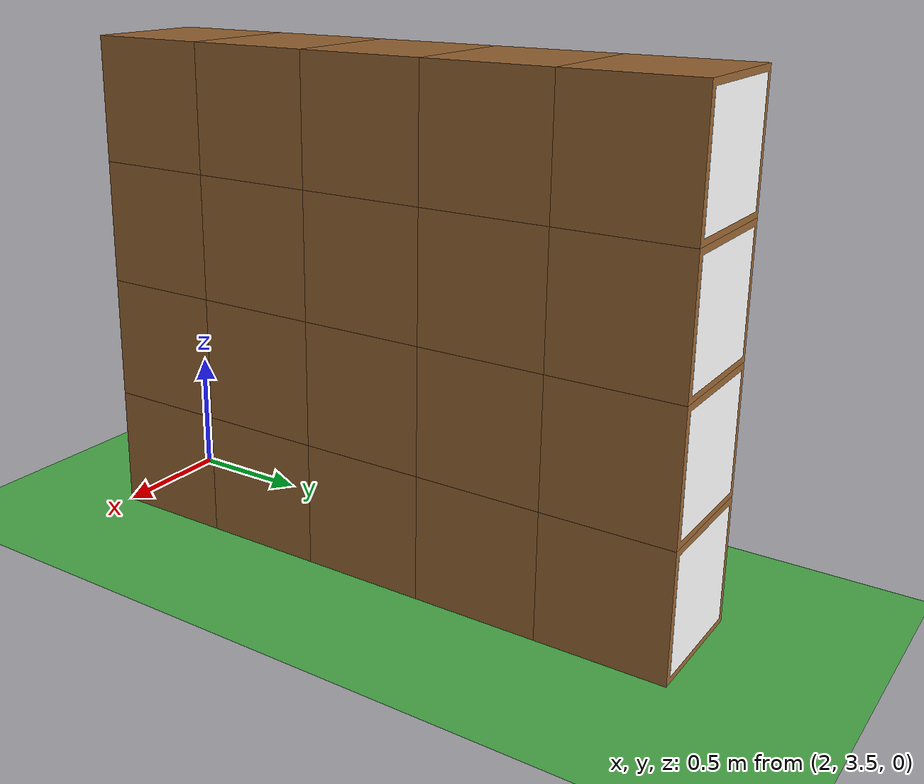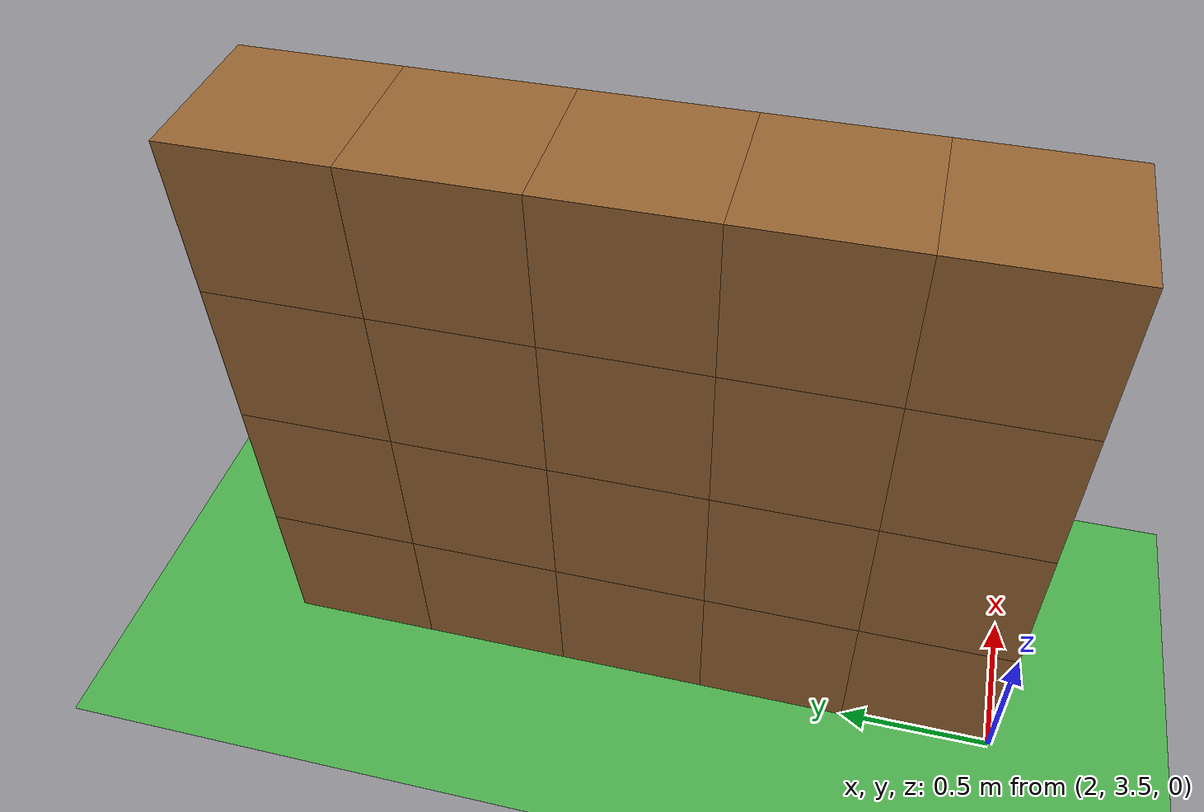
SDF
<sdf version="1.7">
 <world name="tsmc_bkk">
  <physics type="ode">
   <max_step_size>0.004</max_step_size>
   <real_time_factor>1.0</real_time_factor>
   <real_time_update_rate>250</real_time_update_rate>
  </physics>
  <gravity>0 0 -9.8</gravity>
  <magnetic_field>2.5e-05 1.8e-05 -4.0e-05</magnetic_field>
  <atmosphere type="adiabatic"/>
  <spherical_coordinates>
   <surface_model>EARTH_WGS84</surface_model>
   <world_frame_orientation>ENU</world_frame_orientation>
   <latitude_deg>23.089813</latitude_deg>
   <longitude_deg>120.307312</longitude_deg>
   <elevation>0</elevation>
  </spherical_coordinates>
  <scene><ambient>1 1 1 1</ambient><background>1 1 1 1</background><shadows>false</shadows></scene>
  <light type="directional" name="no_shadow_light">
   <cast_shadows>false</cast_shadows>
   <pose>0 0 10 0 0 0</pose>
   <diffuse>1 1 1 1</diffuse>
   <specular>0.1 0.1 0.1 1</specular>
   <attenuation><range>1000</range><constant>1</constant><linear>0</linear><quadratic>0</quadratic></attenuation>
   <direction>0 0 -1</direction>
  </light>
  <model name="top_camera">
   <static>true</static>
   <pose>2.25 5.0 20 0 1.5708 0</pose>
   <link name="link">
    <sensor name="top_down_camera" type="camera">
     <camera>
      <horizontal_fov>1.047</horizontal_fov>
      <image><width>800</width><height>800</height><format>R8G8B8</format></image>
      <clip><near>0.1</near><far>100</far></clip>
     </camera>
     <always_on>true</always_on>
     <update_rate>30</update_rate>
     <visualize>true</visualize>
    </sensor>
   </link>
  </model>
  <model name="outer_ground_plane">
   <static>true</static>
   <pose>2.25 5.0 -0.01 0 0 0</pose>
   <link name="link">
    <collision name="collision">
     <geometry><plane><normal>0 0 1</normal><size>6 11</size></plane></geometry>
    </collision>
    <visual name="visual">
     <geometry><plane><normal>0 0 1</normal><size>6 11</size></plane></geometry>
     <material>
      <ambient>0.2 0.6 0.2 1</ambient>
      <diffuse>0.3 0.7 0.3 1</diffuse>
      <specular>0.1 0.1 0.1 1</specular>
     </material>
    </visual>
   </link>
  </model>
  <model name="ground_plane">
   <static>true</static>
   <pose>2.25 5.0 0 0 0 0</pose>
   <link name="link">
    <collision name="collision">
     <geometry><plane><normal>0 0 1</normal><size>4.5 9</size></plane></geometry>
    </collision>
    <visual name="visual">
     <geometry><plane><normal>0 0 1</normal><size>4.5 9</size></plane></geometry>
     <material>
      <ambient>0.5 0.5 0.5 1</ambient>
      <diffuse>0.6 0.6 0.6 1</diffuse>
      <specular>0.1 0.1 0.1 1</specular>
     </material>
    </visual>
   </link>
  </model>
  <model name="stack_r0_b1">
   <static>true</static>
   <pose>2.25 3.75 0.25 0 0 0</pose>
   <link name="stack_link">
    <collision name="collision"><geometry><box><size>0.5 0.5 0.5</size></box></geometry></collision>
    <visual name="visual">
     <geometry><box><size>0.5 0.5 0.5</size></box></geometry>
     <material>
      <ambient>0.4 0.25 0.1 1</ambient>
      <diffuse>0.6 0.4 0.2 1</diffuse>
      <specular>0.1 0.1 0.1 1</specular>
     </material>
    </visual>
    <visual name="aruco_south">
     <pose>0 -0.251 0 1.5707963267948966 0 0</pose>
     <geometry><plane><normal>0 0 1</normal><size>0.45 0.45</size></plane></geometry>
     <material>
      <diffuse>1 1 1 1</diffuse>
      <specular>0.1 0.1 0.1 1</specular>
      <pbr><metal><albedo_map>model://stack_aruco_textures/marker_00.png</albedo_map></metal></pbr>
     </material>
    </visual>
    <visual name="aruco_north">
     <pose>0 0.251 0 -1.5707963267948966 0 0</pose>
     <geometry><plane><normal>0 0 1</normal><size>0.45 0.45</size></plane></geometry>
     <material>
      <diffuse>1 1 1 1</diffuse>
      <specular>0.1 0.1 0.1 1</specular>
      <pbr><metal><albedo_map>model://stack_aruco_textures/marker_20.png</albedo_map></metal></pbr>
     </material>
    </visual>
    <inertial>
     <mass>0.5</mass>
     <inertia><ixx>0.00208</ixx><ixy>0</ixy><ixz>0</ixz><iyy>0.00208</iyy><iyz>0</iyz><izz>0.00208</izz></inertia>
    </inertial>
   </link>
  </model>
  <model name="stack_r0_b2">
   <static>true</static>
   <pose>2.25 3.75 0.75 0 0 0</pose>
   <link name="stack_link">
    <collision name="collision"><geometry><box><size>0.5 0.5 0.5</size></box></geometry></collision>
    <visual name="visual">
     <geometry><box><size>0.5 0.5 0.5</size></box></geometry>
     <material>
      <ambient>0.4 0.25 0.1 1</ambient>
      <diffuse>0.6 0.4 0.2 1</diffuse>
      <specular>0.1 0.1 0.1 1</specular>
     </material>
    </visual>
    <visual name="aruco_south">
     <pose>0 -0.251 0 1.5707963267948966 0 0</pose>
     <geometry><plane><normal>0 0 1</normal><size>0.45 0.45</size></plane></geometry>
     <material>
      <diffuse>1 1 1 1</diffuse>
      <specular>0.1 0.1 0.1 1</specular>
      <pbr><metal><albedo_map>model://stack_aruco_textures/marker_01.png</albedo_map></metal></pbr>
     </material>
    </visual>
    <visual name="aruco_north">
     <pose>0 0.251 0 -1.5707963267948966 0 0</pose>
     <geometry><plane><normal>0 0 1</normal><size>0.45 0.45</size></plane></geometry>
     <material>
      <diffuse>1 1 1 1</diffuse>
      <specular>0.1 0.1 0.1 1</specular>
      <pbr><metal><albedo_map>model://stack_aruco_textures/marker_21.png</albedo_map></metal></pbr>
     </material>
    </visual>
    <inertial>
     <mass>0.5</mass>
     <inertia><ixx>0.00208</ixx><ixy>0</ixy><ixz>0</ixz><iyy>0.00208</iyy><iyz>0</iyz><izz>0.00208</izz></inertia>
    </inertial>
   </link>
  </model>
  <model name="stack_r0_b3">
   <static>true</static>
   <pose>2.25 3.75 1.25 0 0 0</pose>
   <link name="stack_link">
    <collision name="collision"><geometry><box><size>0.5 0.5 0.5</size></box></geometry></collision>
    <visual name="visual">
     <geometry><box><size>0.5 0.5 0.5</size></box></geometry>
     <material>
      <ambient>0.4 0.25 0.1 1</ambient>
      <diffuse>0.6 0.4 0.2 1</diffuse>
      <specular>0.1 0.1 0.1 1</specular>
     </material>
    </visual>
    <visual name="aruco_south">
     <pose>0 -0.251 0 1.5707963267948966 0 0</pose>
     <geometry><plane><normal>0 0 1</normal><size>0.45 0.45</size></plane></geometry>
     <material>
      <diffuse>1 1 1 1</diffuse>
      <specular>0.1 0.1 0.1 1</specular>
      <pbr><metal><albedo_map>model://stack_aruco_textures/marker_02.png</albedo_map></metal></pbr>
     </material>
    </visual>
    <visual name="aruco_north">
     <pose>0 0.251 0 -1.5707963267948966 0 0</pose>
     <geometry><plane><normal>0 0 1</normal><size>0.45 0.45</size></plane></geometry>
     <material>
      <diffuse>1 1 1 1</diffuse>
      <specular>0.1 0.1 0.1 1</specular>
      <pbr><metal><albedo_map>model://stack_aruco_textures/marker_22.png</albedo_map></metal></pbr>
     </material>
    </visual>
    <inertial>
     <mass>0.5</mass>
     <inertia><ixx>0.00208</ixx><ixy>0</ixy><ixz>0</ixz><iyy>0.00208</iyy><iyz>0</iyz><izz>0.00208</izz></inertia>
    </inertial>
   </link>
  </model>
  <model name="stack_r0_b4">
   <static>true</static>
   <pose>2.25 3.75 1.75 0 0 0</pose>
   <link name="stack_link">
    <collision name="collision"><geometry><box><size>0.5 0.5 0.5</size></box></geometry></collision>
    <visual name="visual">
     <geometry><box><size>0.5 0.5 0.5</size></box></geometry>
     <material>
      <ambient>0.4 0.25 0.1 1</ambient>
      <diffuse>0.6 0.4 0.2 1</diffuse>
      <specular>0.1 0.1 0.1 1</specular>
     </material>
    </visual>
    <visual name="aruco_south">
     <pose>0 -0.251 0 1.5707963267948966 0 0</pose>
     <geometry><plane><normal>0 0 1</normal><size>0.45 0.45</size></plane></geometry>
     <material>
      <diffuse>1 1 1 1</diffuse>
      <specular>0.1 0.1 0.1 1</specular>
      <pbr><metal><albedo_map>model://stack_aruco_textures/marker_03.png</albedo_map></metal></pbr>
     </material>
    </visual>
    <visual name="aruco_north">
     <pose>0 0.251 0 -1.5707963267948966 0 0</pose>
     <geometry><plane><normal>0 0 1</normal><size>0.45 0.45</size></plane></geometry>
     <material>
      <diffuse>1 1 1 1</diffuse>
      <specular>0.1 0.1 0.1 1</specular>
      <pbr><metal><albedo_map>model://stack_aruco_textures/marker_23.png</albedo_map></metal></pbr>
     </material>
    </visual>
    <inertial>
     <mass>0.5</mass>
     <inertia><ixx>0.00208</ixx><ixy>0</ixy><ixz>0</ixz><iyy>0.00208</iyy><iyz>0</iyz><izz>0.00208</izz></inertia>
    </inertial>
   </link>
  </model>
  <model name="stack_r1_b1">
   <static>true</static>
   <pose>2.25 4.25 0.25 0 0 0</pose>
   <link name="stack_link">
    <collision name="collision"><geometry><box><size>0.5 0.5 0.5</size></box></geometry></collision>
    <visual name="visual">
     <geometry><box><size>0.5 0.5 0.5</size></box></geometry>
     <material>
      <ambient>0.4 0.25 0.1 1</ambient>
      <diffuse>0.6 0.4 0.2 1</diffuse>
      <specular>0.1 0.1 0.1 1</specular>
     </material>
    </visual>
    <visual name="aruco_south">
     <pose>0 -0.251 0 1.5707963267948966 0 0</pose>
     <geometry><plane><normal>0 0 1</normal><size>0.45 0.45</size></plane></geometry>
     <material>
      <diffuse>1 1 1 1</diffuse>
      <specular>0.1 0.1 0.1 1</specular>
      <pbr><metal><albedo_map>model://stack_aruco_textures/marker_04.png</albedo_map></metal></pbr>
     </material>
    </visual>
    <visual name="aruco_north">
     <pose>0 0.251 0 -1.5707963267948966 0 0</pose>
     <geometry><plane><normal>0 0 1</normal><size>0.45 0.45</size></plane></geometry>
     <material>
      <diffuse>1 1 1 1</diffuse>
      <specular>0.1 0.1 0.1 1</specular>
      <pbr><metal><albedo_map>model://stack_aruco_textures/marker_24.png</albedo_map></metal></pbr>
     </material>
    </visual>
    <inertial>
     <mass>0.5</mass>
     <inertia><ixx>0.00208</ixx><ixy>0</ixy><ixz>0</ixz><iyy>0.00208</iyy><iyz>0</iyz><izz>0.00208</izz></inertia>
    </inertial>
   </link>
  </model>
  <model name="stack_r1_b2">
   <static>true</static>
   <pose>2.25 4.25 0.75 0 0 0</pose>
   <link name="stack_link">
    <collision name="collision"><geometry><box><size>0.5 0.5 0.5</size></box></geometry></collision>
    <visual name="visual">
     <geometry><box><size>0.5 0.5 0.5</size></box></geometry>
     <material>
      <ambient>0.4 0.25 0.1 1</ambient>
      <diffuse>0.6 0.4 0.2 1</diffuse>
      <specular>0.1 0.1 0.1 1</specular>
     </material>
    </visual>
    <visual name="aruco_south">
     <pose>0 -0.251 0 1.5707963267948966 0 0</pose>
     <geometry><plane><normal>0 0 1</normal><size>0.45 0.45</size></plane></geometry>
     <material>
      <diffuse>1 1 1 1</diffuse>
      <specular>0.1 0.1 0.1 1</specular>
      <pbr><metal><albedo_map>model://stack_aruco_textures/marker_05.png</albedo_map></metal></pbr>
     </material>
    </visual>
    <visual name="aruco_north">
     <pose>0 0.251 0 -1.5707963267948966 0 0</pose>
     <geometry><plane><normal>0 0 1</normal><size>0.45 0.45</size></plane></geometry>
     <material>
      <diffuse>1 1 1 1</diffuse>
      <specular>0.1 0.1 0.1 1</specular>
      <pbr><metal><albedo_map>model://stack_aruco_textures/marker_25.png</albedo_map></metal></pbr>
     </material>
    </visual>
    <inertial>
     <mass>0.5</mass>
     <inertia><ixx>0.00208</ixx><ixy>0</ixy><ixz>0</ixz><iyy>0.00208</iyy><iyz>0</iyz><izz>0.00208</izz></inertia>
    </inertial>
   </link>
  </model>
  <model name="stack_r1_b3">
   <static>true</static>
   <pose>2.25 4.25 1.25 0 0 0</pose>
   <link name="stack_link">
    <collision name="collision"><geometry><box><size>0.5 0.5 0.5</size></box></geometry></collision>
    <visual name="visual">
     <geometry><box><size>0.5 0.5 0.5</size></box></geometry>
     <material>
      <ambient>0.4 0.25 0.1 1</ambient>
      <diffuse>0.6 0.4 0.2 1</diffuse>
      <specular>0.1 0.1 0.1 1</specular>
     </material>
    </visual>
    <visual name="aruco_south">
     <pose>0 -0.251 0 1.5707963267948966 0 0</pose>
     <geometry><plane><normal>0 0 1</normal><size>0.45 0.45</size></plane></geometry>
     <material>
      <diffuse>1 1 1 1</diffuse>
      <specular>0.1 0.1 0.1 1</specular>
      <pbr><metal><albedo_map>model://stack_aruco_textures/marker_06.png</albedo_map></metal></pbr>
     </material>
    </visual>
    <visual name="aruco_north">
     <pose>0 0.251 0 -1.5707963267948966 0 0</pose>
     <geometry><plane><normal>0 0 1</normal><size>0.45 0.45</size></plane></geometry>
     <material>
      <diffuse>1 1 1 1</diffuse>
      <specular>0.1 0.1 0.1 1</specular>
      <pbr><metal><albedo_map>model://stack_aruco_textures/marker_26.png</albedo_map></metal></pbr>
     </material>
    </visual>
    <inertial>
     <mass>0.5</mass>
     <inertia><ixx>0.00208</ixx><ixy>0</ixy><ixz>0</ixz><iyy>0.00208</iyy><iyz>0</iyz><izz>0.00208</izz></inertia>
    </inertial>
   </link>
  </model>
  <model name="stack_r1_b4">
   <static>true</static>
   <pose>2.25 4.25 1.75 0 0 0</pose>
   <link name="stack_link">
    <collision name="collision"><geometry><box><size>0.5 0.5 0.5</size></box></geometry></collision>
    <visual name="visual">
     <geometry><box><size>0.5 0.5 0.5</size></box></geometry>
     <material>
      <ambient>0.4 0.25 0.1 1</ambient>
      <diffuse>0.6 0.4 0.2 1</diffuse>
      <specular>0.1 0.1 0.1 1</specular>
     </material>
    </visual>
    <visual name="aruco_south">
     <pose>0 -0.251 0 1.5707963267948966 0 0</pose>
     <geometry><plane><normal>0 0 1</normal><size>0.45 0.45</size></plane></geometry>
     <material>
      <diffuse>1 1 1 1</diffuse>
      <specular>0.1 0.1 0.1 1</specular>
      <pbr><metal><albedo_map>model://stack_aruco_textures/marker_07.png</albedo_map></metal></pbr>
     </material>
    </visual>
    <visual name="aruco_north">
     <pose>0 0.251 0 -1.5707963267948966 0 0</pose>
     <geometry><plane><normal>0 0 1</normal><size>0.45 0.45</size></plane></geometry>
     <material>
      <diffuse>1 1 1 1</diffuse>
      <specular>0.1 0.1 0.1 1</specular>
      <pbr><metal><albedo_map>model://stack_aruco_textures/marker_27.png</albedo_map></metal></pbr>
     </material>
    </visual>
    <inertial>
     <mass>0.5</mass>
     <inertia><ixx>0.00208</ixx><ixy>0</ixy><ixz>0</ixz><iyy>0.00208</iyy><iyz>0</iyz><izz>0.00208</izz></inertia>
    </inertial>
   </link>
  </model>
  <model name="stack_r2_b1">
   <static>true</static>
   <pose>2.25 4.75 0.25 0 0 0</pose>
   <link name="stack_link">
    <collision name="collision"><geometry><box><size>0.5 0.5 0.5</size></box></geometry></collision>
    <visual name="visual">
     <geometry><box><size>0.5 0.5 0.5</size></box></geometry>
     <material>
      <ambient>0.4 0.25 0.1 1</ambient>
      <diffuse>0.6 0.4 0.2 1</diffuse>
      <specular>0.1 0.1 0.1 1</specular>
     </material>
    </visual>
    <visual name="aruco_south">
     <pose>0 -0.251 0 1.5707963267948966 0 0</pose>
     <geometry><plane><normal>0 0 1</normal><size>0.45 0.45</size></plane></geometry>
     <material>
      <diffuse>1 1 1 1</diffuse>
      <specular>0.1 0.1 0.1 1</specular>
      <pbr><metal><albedo_map>model://stack_aruco_textures/marker_08.png</albedo_map></metal></pbr>
     </material>
    </visual>
    <visual name="aruco_north">
     <pose>0 0.251 0 -1.5707963267948966 0 0</pose>
     <geometry><plane><normal>0 0 1</normal><size>0.45 0.45</size></plane></geometry>
     <material>
      <diffuse>1 1 1 1</diffuse>
      <specular>0.1 0.1 0.1 1</specular>
      <pbr><metal><albedo_map>model://stack_aruco_textures/marker_28.png</albedo_map></metal></pbr>
     </material>
    </visual>
    <inertial>
     <mass>0.5</mass>
     <inertia><ixx>0.00208</ixx><ixy>0</ixy><ixz>0</ixz><iyy>0.00208</iyy><iyz>0</iyz><izz>0.00208</izz></inertia>
    </inertial>
   </link>
  </model>
  <model name="stack_r2_b2">
   <static>true</static>
   <pose>2.25 4.75 0.75 0 0 0</pose>
   <link name="stack_link">
    <collision name="collision"><geometry><box><size>0.5 0.5 0.5</size></box></geometry></collision>
    <visual name="visual">
     <geometry><box><size>0.5 0.5 0.5</size></box></geometry>
     <material>
      <ambient>0.4 0.25 0.1 1</ambient>
      <diffuse>0.6 0.4 0.2 1</diffuse>
      <specular>0.1 0.1 0.1 1</specular>
     </material>
    </visual>
    <visual name="aruco_south">
     <pose>0 -0.251 0 1.5707963267948966 0 0</pose>
     <geometry><plane><normal>0 0 1</normal><size>0.45 0.45</size></plane></geometry>
     <material>
      <diffuse>1 1 1 1</diffuse>
      <specular>0.1 0.1 0.1 1</specular>
      <pbr><metal><albedo_map>model://stack_aruco_textures/marker_09.png</albedo_map></metal></pbr>
     </material>
    </visual>
    <visual name="aruco_north">
     <pose>0 0.251 0 -1.5707963267948966 0 0</pose>
     <geometry><plane><normal>0 0 1</normal><size>0.45 0.45</size></plane></geometry>
     <material>
      <diffuse>1 1 1 1</diffuse>
      <specular>0.1 0.1 0.1 1</specular>
      <pbr><metal><albedo_map>model://stack_aruco_textures/marker_29.png</albedo_map></metal></pbr>
     </material>
    </visual>
    <inertial>
     <mass>0.5</mass>
     <inertia><ixx>0.00208</ixx><ixy>0</ixy><ixz>0</ixz><iyy>0.00208</iyy><iyz>0</iyz><izz>0.00208</izz></inertia>
    </inertial>
   </link>
  </model>
  <model name="stack_r2_b3">
   <static>true</static>
   <pose>2.25 4.75 1.25 0 0 0</pose>
   <link name="stack_link">
    <collision name="collision"><geometry><box><size>0.5 0.5 0.5</size></box></geometry></collision>
    <visual name="visual">
     <geometry><box><size>0.5 0.5 0.5</size></box></geometry>
     <material>
      <ambient>0.4 0.25 0.1 1</ambient>
      <diffuse>0.6 0.4 0.2 1</diffuse>
      <specular>0.1 0.1 0.1 1</specular>
     </material>
    </visual>
    <visual name="aruco_south">
     <pose>0 -0.251 0 1.5707963267948966 0 0</pose>
     <geometry><plane><normal>0 0 1</normal><size>0.45 0.45</size></plane></geometry>
     <material>
      <diffuse>1 1 1 1</diffuse>
      <specular>0.1 0.1 0.1 1</specular>
      <pbr><metal><albedo_map>model://stack_aruco_textures/marker_10.png</albedo_map></metal></pbr>
     </material>
    </visual>
    <visual name="aruco_north">
     <pose>0 0.251 0 -1.5707963267948966 0 0</pose>
     <geometry><plane><normal>0 0 1</normal><size>0.45 0.45</size></plane></geometry>
     <material>
      <diffuse>1 1 1 1</diffuse>
      <specular>0.1 0.1 0.1 1</specular>
      <pbr><metal><albedo_map>model://stack_aruco_textures/marker_30.png</albedo_map></metal></pbr>
     </material>
    </visual>
    <inertial>
     <mass>0.5</mass>
     <inertia><ixx>0.00208</ixx><ixy>0</ixy><ixz>0</ixz><iyy>0.00208</iyy><iyz>0</iyz><izz>0.00208</izz></inertia>
    </inertial>
   </link>
  </model>
  <model name="stack_r2_b4">
   <static>true</static>
   <pose>2.25 4.75 1.75 0 0 0</pose>
   <link name="stack_link">
    <collision name="collision"><geometry><box><size>0.5 0.5 0.5</size></box></geometry></collision>
    <visual name="visual">
     <geometry><box><size>0.5 0.5 0.5</size></box></geometry>
     <material>
      <ambient>0.4 0.25 0.1 1</ambient>
      <diffuse>0.6 0.4 0.2 1</diffuse>
      <specular>0.1 0.1 0.1 1</specular>
     </material>
    </visual>
    <visual name="aruco_south">
     <pose>0 -0.251 0 1.5707963267948966 0 0</pose>
     <geometry><plane><normal>0 0 1</normal><size>0.45 0.45</size></plane></geometry>
     <material>
      <diffuse>1 1 1 1</diffuse>
      <specular>0.1 0.1 0.1 1</specular>
      <pbr><metal><albedo_map>model://stack_aruco_textures/marker_11.png</albedo_map></metal></pbr>
     </material>
    </visual>
    <visual name="aruco_north">
     <pose>0 0.251 0 -1.5707963267948966 0 0</pose>
     <geometry><plane><normal>0 0 1</normal><size>0.45 0.45</size></plane></geometry>
     <material>
      <diffuse>1 1 1 1</diffuse>
      <specular>0.1 0.1 0.1 1</specular>
      <pbr><metal><albedo_map>model://stack_aruco_textures/marker_31.png</albedo_map></metal></pbr>
     </material>
    </visual>
    <inertial>
     <mass>0.5</mass>
     <inertia><ixx>0.00208</ixx><ixy>0</ixy><ixz>0</ixz><iyy>0.00208</iyy><iyz>0</iyz><izz>0.00208</izz></inertia>
    </inertial>
   </link>
  </model>
  <model name="stack_r3_b1">
   <static>true</static>
   <pose>2.25 5.25 0.25 0 0 0</pose>
   <link name="stack_link">
    <collision name="collision"><geometry><box><size>0.5 0.5 0.5</size></box></geometry></collision>
    <visual name="visual">
     <geometry><box><size>0.5 0.5 0.5</size></box></geometry>
     <material>
      <ambient>0.4 0.25 0.1 1</ambient>
      <diffuse>0.6 0.4 0.2 1</diffuse>
      <specular>0.1 0.1 0.1 1</specular>
     </material>
    </visual>
    <visual name="aruco_south">
     <pose>0 -0.251 0 1.5707963267948966 0 0</pose>
     <geometry><plane><normal>0 0 1</normal><size>0.45 0.45</size></plane></geometry>
     <material>
      <diffuse>1 1 1 1</diffuse>
      <specular>0.1 0.1 0.1 1</specular>
      <pbr><metal><albedo_map>model://stack_aruco_textures/marker_12.png</albedo_map></metal></pbr>
     </material>
    </visual>
    <visual name="aruco_north">
     <pose>0 0.251 0 -1.5707963267948966 0 0</pose>
     <geometry><plane><normal>0 0 1</normal><size>0.45 0.45</size></plane></geometry>
     <material>
      <diffuse>1 1 1 1</diffuse>
      <specular>0.1 0.1 0.1 1</specular>
      <pbr><metal><albedo_map>model://stack_aruco_textures/marker_32.png</albedo_map></metal></pbr>
     </material>
    </visual>
    <inertial>
     <mass>0.5</mass>
     <inertia><ixx>0.00208</ixx><ixy>0</ixy><ixz>0</ixz><iyy>0.00208</iyy><iyz>0</iyz><izz>0.00208</izz></inertia>
    </inertial>
   </link>
  </model>
  <model name="stack_r3_b2">
   <static>true</static>
   <pose>2.25 5.25 0.75 0 0 0</pose>
   <link name="stack_link">
    <collision name="collision"><geometry><box><size>0.5 0.5 0.5</size></box></geometry></collision>
    <visual name="visual">
     <geometry><box><size>0.5 0.5 0.5</size></box></geometry>
     <material>
      <ambient>0.4 0.25 0.1 1</ambient>
      <diffuse>0.6 0.4 0.2 1</diffuse>
      <specular>0.1 0.1 0.1 1</specular>
     </material>
    </visual>
    <visual name="aruco_south">
     <pose>0 -0.251 0 1.5707963267948966 0 0</pose>
     <geometry><plane><normal>0 0 1</normal><size>0.45 0.45</size></plane></geometry>
     <material>
      <diffuse>1 1 1 1</diffuse>
      <specular>0.1 0.1 0.1 1</specular>
      <pbr><metal><albedo_map>model://stack_aruco_textures/marker_13.png</albedo_map></metal></pbr>
     </material>
    </visual>
    <visual name="aruco_north">
     <pose>0 0.251 0 -1.5707963267948966 0 0</pose>
     <geometry><plane><normal>0 0 1</normal><size>0.45 0.45</size></plane></geometry>
     <material>
      <diffuse>1 1 1 1</diffuse>
      <specular>0.1 0.1 0.1 1</specular>
      <pbr><metal><albedo_map>model://stack_aruco_textures/marker_33.png</albedo_map></metal></pbr>
     </material>
    </visual>
    <inertial>
     <mass>0.5</mass>
     <inertia><ixx>0.00208</ixx><ixy>0</ixy><ixz>0</ixz><iyy>0.00208</iyy><iyz>0</iyz><izz>0.00208</izz></inertia>
    </inertial>
   </link>
  </model>
  <model name="stack_r3_b3">
   <static>true</static>
   <pose>2.25 5.25 1.25 0 0 0</pose>
   <link name="stack_link">
    <collision name="collision"><geometry><box><size>0.5 0.5 0.5</size></box></geometry></collision>
    <visual name="visual">
     <geometry><box><size>0.5 0.5 0.5</size></box></geometry>
     <material>
      <ambient>0.4 0.25 0.1 1</ambient>
      <diffuse>0.6 0.4 0.2 1</diffuse>
      <specular>0.1 0.1 0.1 1</specular>
     </material>
    </visual>
    <visual name="aruco_south">
     <pose>0 -0.251 0 1.5707963267948966 0 0</pose>
     <geometry><plane><normal>0 0 1</normal><size>0.45 0.45</size></plane></geometry>
     <material>
      <diffuse>1 1 1 1</diffuse>
      <specular>0.1 0.1 0.1 1</specular>
      <pbr><metal><albedo_map>model://stack_aruco_textures/marker_14.png</albedo_map></metal></pbr>
     </material>
    </visual>
    <visual name="aruco_north">
     <pose>0 0.251 0 -1.5707963267948966 0 0</pose>
     <geometry><plane><normal>0 0 1</normal><size>0.45 0.45</size></plane></geometry>
     <material>
      <diffuse>1 1 1 1</diffuse>
      <specular>0.1 0.1 0.1 1</specular>
      <pbr><metal><albedo_map>model://stack_aruco_textures/marker_34.png</albedo_map></metal></pbr>
     </material>
    </visual>
    <inertial>
     <mass>0.5</mass>
     <inertia><ixx>0.00208</ixx><ixy>0</ixy><ixz>0</ixz><iyy>0.00208</iyy><iyz>0</iyz><izz>0.00208</izz></inertia>
    </inertial>
   </link>
  </model>
  <model name="stack_r3_b4">
   <static>true</static>
   <pose>2.25 5.25 1.75 0 0 0</pose>
   <link name="stack_link">
    <collision name="collision"><geometry><box><size>0.5 0.5 0.5</size></box></geometry></collision>
    <visual name="visual">
     <geometry><box><size>0.5 0.5 0.5</size></box></geometry>
     <material>
      <ambient>0.4 0.25 0.1 1</ambient>
      <diffuse>0.6 0.4 0.2 1</diffuse>
      <specular>0.1 0.1 0.1 1</specular>
     </material>
    </visual>
    <visual name="aruco_south">
     <pose>0 -0.251 0 1.5707963267948966 0 0</pose>
     <geometry><plane><normal>0 0 1</normal><size>0.45 0.45</size></plane></geometry>
     <material>
      <diffuse>1 1 1 1</diffuse>
      <specular>0.1 0.1 0.1 1</specular>
      <pbr><metal><albedo_map>model://stack_aruco_textures/marker_15.png</albedo_map></metal></pbr>
     </material>
    </visual>
    <visual name="aruco_north">
     <pose>0 0.251 0 -1.5707963267948966 0 0</pose>
     <geometry><plane><normal>0 0 1</normal><size>0.45 0.45</size></plane></geometry>
     <material>
      <diffuse>1 1 1 1</diffuse>
      <specular>0.1 0.1 0.1 1</specular>
      <pbr><metal><albedo_map>model://stack_aruco_textures/marker_35.png</albedo_map></metal></pbr>
     </material>
    </visual>
    <inertial>
     <mass>0.5</mass>
     <inertia><ixx>0.00208</ixx><ixy>0</ixy><ixz>0</ixz><iyy>0.00208</iyy><iyz>0</iyz><izz>0.00208</izz></inertia>
    </inertial>
   </link>
  </model>
  <model name="stack_r4_b1">
   <static>true</static>
   <pose>2.25 5.75 0.25 0 0 0</pose>
   <link name="stack_link">
    <collision name="collision"><geometry><box><size>0.5 0.5 0.5</size></box></geometry></collision>
    <visual name="visual">
     <geometry><box><size>0.5 0.5 0.5</size></box></geometry>
     <material>
      <ambient>0.4 0.25 0.1 1</ambient>
      <diffuse>0.6 0.4 0.2 1</diffuse>
      <specular>0.1 0.1 0.1 1</specular>
     </material>
    </visual>
    <visual name="aruco_south">
     <pose>0 -0.251 0 1.5707963267948966 0 0</pose>
     <geometry><plane><normal>0 0 1</normal><size>0.45 0.45</size></plane></geometry>
     <material>
      <diffuse>1 1 1 1</diffuse>
      <specular>0.1 0.1 0.1 1</specular>
      <pbr><metal><albedo_map>model://stack_aruco_textures/marker_16.png</albedo_map></metal></pbr>
     </material>
    </visual>
    <visual name="aruco_north">
     <pose>0 0.251 0 -1.5707963267948966 0 0</pose>
     <geometry><plane><normal>0 0 1</normal><size>0.45 0.45</size></plane></geometry>
     <material>
      <diffuse>1 1 1 1</diffuse>
      <specular>0.1 0.1 0.1 1</specular>
      <pbr><metal><albedo_map>model://stack_aruco_textures/marker_36.png</albedo_map></metal></pbr>
     </material>
    </visual>
    <inertial>
     <mass>0.5</mass>
     <inertia><ixx>0.00208</ixx><ixy>0</ixy><ixz>0</ixz><iyy>0.00208</iyy><iyz>0</iyz><izz>0.00208</izz></inertia>
    </inertial>
   </link>
  </model>
  <model name="stack_r4_b2">
   <static>true</static>
   <pose>2.25 5.75 0.75 0 0 0</pose>
   <link name="stack_link">
    <collision name="collision"><geometry><box><size>0.5 0.5 0.5</size></box></geometry></collision>
    <visual name="visual">
     <geometry><box><size>0.5 0.5 0.5</size></box></geometry>
     <material>
      <ambient>0.4 0.25 0.1 1</ambient>
      <diffuse>0.6 0.4 0.2 1</diffuse>
      <specular>0.1 0.1 0.1 1</specular>
     </material>
    </visual>
    <visual name="aruco_south">
     <pose>0 -0.251 0 1.5707963267948966 0 0</pose>
     <geometry><plane><normal>0 0 1</normal><size>0.45 0.45</size></plane></geometry>
     <material>
      <diffuse>1 1 1 1</diffuse>
      <specular>0.1 0.1 0.1 1</specular>
      <pbr><metal><albedo_map>model://stack_aruco_textures/marker_17.png</albedo_map></metal></pbr>
     </material>
    </visual>
    <visual name="aruco_north">
     <pose>0 0.251 0 -1.5707963267948966 0 0</pose>
     <geometry><plane><normal>0 0 1</normal><size>0.45 0.45</size></plane></geometry>
     <material>
      <diffuse>1 1 1 1</diffuse>
      <specular>0.1 0.1 0.1 1</specular>
      <pbr><metal><albedo_map>model://stack_aruco_textures/marker_37.png</albedo_map></metal></pbr>
     </material>
    </visual>
    <inertial>
     <mass>0.5</mass>
     <inertia><ixx>0.00208</ixx><ixy>0</ixy><ixz>0</ixz><iyy>0.00208</iyy><iyz>0</iyz><izz>0.00208</izz></inertia>
    </inertial>
   </link>
  </model>
  <model name="stack_r4_b3">
   <static>true</static>
   <pose>2.25 5.75 1.25 0 0 0</pose>
   <link name="stack_link">
    <collision name="collision"><geometry><box><size>0.5 0.5 0.5</size></box></geometry></collision>
    <visual name="visual">
     <geometry><box><size>0.5 0.5 0.5</size></box></geometry>
     <material>
      <ambient>0.4 0.25 0.1 1</ambient>
      <diffuse>0.6 0.4 0.2 1</diffuse>
      <specular>0.1 0.1 0.1 1</specular>
     </material>
    </visual>
    <visual name="aruco_south">
     <pose>0 -0.251 0 1.5707963267948966 0 0</pose>
     <geometry><plane><normal>0 0 1</normal><size>0.45 0.45</size></plane></geometry>
     <material>
      <diffuse>1 1 1 1</diffuse>
      <specular>0.1 0.1 0.1 1</specular>
      <pbr><metal><albedo_map>model://stack_aruco_textures/marker_18.png</albedo_map></metal></pbr>
     </material>
    </visual>
    <visual name="aruco_north">
     <pose>0 0.251 0 -1.5707963267948966 0 0</pose>
     <geometry><plane><normal>0 0 1</normal><size>0.45 0.45</size></plane></geometry>
     <material>
      <diffuse>1 1 1 1</diffuse>
      <specular>0.1 0.1 0.1 1</specular>
      <pbr><metal><albedo_map>model://stack_aruco_textures/marker_38.png</albedo_map></metal></pbr>
     </material>
    </visual>
    <inertial>
     <mass>0.5</mass>
     <inertia><ixx>0.00208</ixx><ixy>0</ixy><ixz>0</ixz><iyy>0.00208</iyy><iyz>0</iyz><izz>0.00208</izz></inertia>
    </inertial>
   </link>
  </model>
  <model name="stack_r4_b4">
   <static>true</static>
   <pose>2.25 5.75 1.75 0 0 0</pose>
   <link name="stack_link">
    <collision name="collision"><geometry><box><size>0.5 0.5 0.5</size></box></geometry></collision>
    <visual name="visual">
     <geometry><box><size>0.5 0.5 0.5</size></box></geometry>
     <material>
      <ambient>0.4 0.25 0.1 1</ambient>
      <diffuse>0.6 0.4 0.2 1</diffuse>
      <specular>0.1 0.1 0.1 1</specular>
     </material>
    </visual>
    <visual name="aruco_south">
     <pose>0 -0.251 0 1.5707963267948966 0 0</pose>
     <geometry><plane><normal>0 0 1</normal><size>0.45 0.45</size></plane></geometry>
     <material>
      <diffuse>1 1 1 1</diffuse>
      <specular>0.1 0.1 0.1 1</specular>
      <pbr><metal><albedo_map>model://stack_aruco_textures/marker_19.png</albedo_map></metal></pbr>
     </material>
    </visual>
    <visual name="aruco_north">
     <pose>0 0.251 0 -1.5707963267948966 0 0</pose>
     <geometry><plane><normal>0 0 1</normal><size>0.45 0.45</size></plane></geometry>
     <material>
      <diffuse>1 1 1 1</diffuse>
      <specular>0.1 0.1 0.1 1</specular>
      <pbr><metal><albedo_map>model://stack_aruco_textures/marker_39.png</albedo_map></metal></pbr>
     </material>
    </visual>
    <inertial>
     <mass>0.5</mass>
     <inertia><ixx>0.00208</ixx><ixy>0</ixy><ixz>0</ixz><iyy>0.00208</iyy><iyz>0</iyz><izz>0.00208</izz></inertia>
    </inertial>
   </link>
  </model>
 </world>
</sdf>
